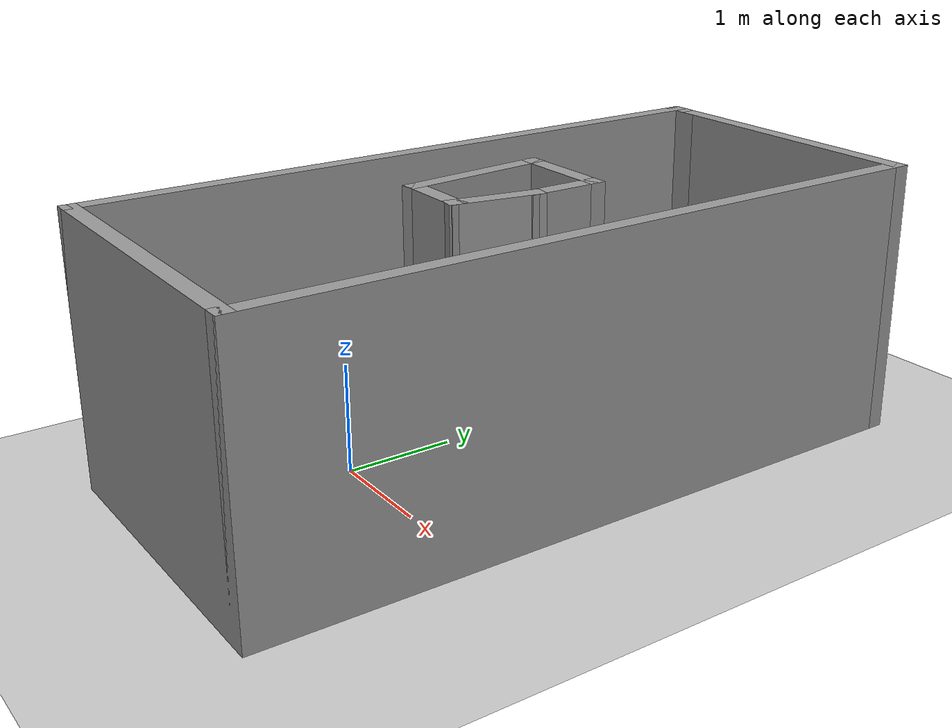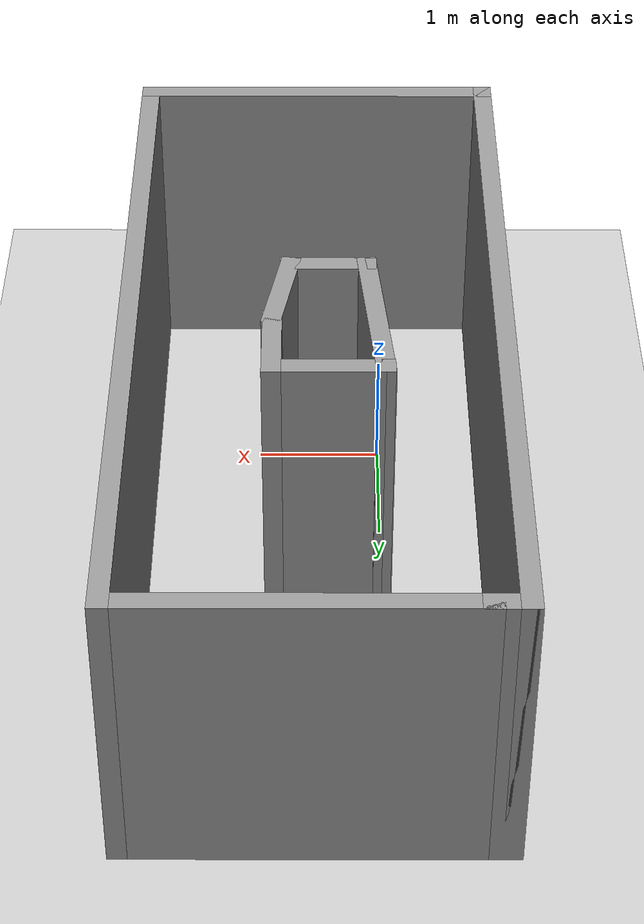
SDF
<sdf version="1.6">
 <world name="default">
  <light name="sun" type="directional">
   <pose>0 0 10 0 -0 0</pose>
   <diffuse>0.8 0.8 0.8 1</diffuse>
   <specular>0.2 0.2 0.2 1</specular>
   <attenuation>
    <range>1000</range>
    <constant>0.9</constant>
    <linear>0.01</linear>
    <quadratic>0.001</quadratic>
   </attenuation>
   <direction>-0.5 0.1 -0.9</direction>
  </light>
  <model name="ground_plane">
   <static>1</static>
   <link name="link">
    <collision name="collision">
     <geometry><plane><normal>0 0 1</normal><size>100 100</size></plane></geometry>
     <surface>
      <contact><collide_bitmask>65535</collide_bitmask></contact>
      <friction><ode><mu>100</mu><mu2>50</mu2></ode></friction>
     </surface>
    </collision>
    <visual name="visual">
     <cast_shadows>0</cast_shadows>
     <geometry><plane><normal>0 0 1</normal><size>100 100</size></plane></geometry>
     <material>
      <script><uri>file://media/materials/scripts/gazebo.material</uri><name>Gazebo/Grey</name></script>
     </material>
    </visual>
   </link>
  </model>
  <gravity>0 0 -9.8</gravity>
  <magnetic_field>6e-06 2.3e-05 -4.2e-05</magnetic_field>
  <atmosphere type="adiabatic"/>
  <physics name="default_physics" default="0" type="ode">
   <max_step_size>0.001</max_step_size>
   <real_time_factor>1</real_time_factor>
   <real_time_update_rate>1000</real_time_update_rate>
  </physics>
  <scene><ambient>0.4 0.4 0.4 1</ambient><background>0.7 0.7 0.7 1</background><shadows>1</shadows></scene>
  <spherical_coordinates>
   <surface_model>EARTH_WGS84</surface_model>
   <latitude_deg>0</latitude_deg>
   <longitude_deg>0</longitude_deg>
   <elevation>0</elevation>
   <heading_deg>0</heading_deg>
  </spherical_coordinates>
  <model name="simple_street">
   <pose>0.525 1.275 0 0 -0 0</pose>
   <link name="Wall_0">
    <collision name="Wall_0_Collision">
     <geometry><box><size>3 0.15 2.5</size></box></geometry>
     <pose>0 0 1.25 0 -0 0</pose>
    </collision>
    <visual name="Wall_0_Visual">
     <pose>0 0 1.25 0 -0 0</pose>
     <geometry><box><size>3 0.15 2.5</size></box></geometry>
     <material>
      <script><uri>file://media/materials/scripts/gazebo.material</uri><name>Gazebo/Grey</name></script>
      <ambient>1 1 1 1</ambient>
     </material>
     <meta><layer>0</layer></meta>
    </visual>
    <pose>0 -3.175 0 0 -0 0</pose>
   </link>
   <link name="Wall_2">
    <collision name="Wall_2_Collision">
     <geometry><box><size>6.5 0.15 2.5</size></box></geometry>
     <pose>0 0 1.25 0 -0 0</pose>
    </collision>
    <visual name="Wall_2_Visual">
     <pose>0 0 1.25 0 -0 0</pose>
     <geometry><box><size>6.5 0.15 2.5</size></box></geometry>
     <material>
      <script><uri>file://media/materials/scripts/gazebo.material</uri><name>Gazebo/Grey</name></script>
      <ambient>1 1 1 1</ambient>
     </material>
     <meta><layer>0</layer></meta>
    </visual>
    <pose>1.425 -0 0 0 -0 1.5708</pose>
   </link>
   <link name="Wall_3">
    <collision name="Wall_3_Collision">
     <geometry><box><size>2.75 0.15 2.5</size></box></geometry>
     <pose>0 0 1.25 0 -0 0</pose>
    </collision>
    <visual name="Wall_3_Visual">
     <pose>0 0 1.25 0 -0 0</pose>
     <geometry><box><size>2.75 0.15 2.5</size></box></geometry>
     <material>
      <script><uri>file://media/materials/scripts/gazebo.material</uri><name>Gazebo/Grey</name></script>
      <ambient>1 1 1 1</ambient>
     </material>
     <meta><layer>0</layer></meta>
    </visual>
    <pose>0.125 3.175 0 0 -0 3.14159</pose>
   </link>
   <link name="Wall_5">
    <collision name="Wall_5_Collision">
     <geometry><box><size>6.5 0.15 2.5</size></box></geometry>
     <pose>0 0 1.25 0 -0 0</pose>
    </collision>
    <visual name="Wall_5_Visual">
     <pose>0 0 1.25 0 -0 0</pose>
     <geometry><box><size>6.5 0.15 2.5</size></box></geometry>
     <material>
      <script><uri>file://media/materials/scripts/gazebo.material</uri><name>Gazebo/Grey</name></script>
      <ambient>1 1 1 1</ambient>
     </material>
     <meta><layer>0</layer></meta>
    </visual>
    <pose>-1.425 -0 0 0 -0 1.5708</pose>
   </link>
   <link name="Wall_6">
    <collision name="Wall_6_Collision">
     <geometry><box><size>0.4 0.15 2.5</size></box></geometry>
     <pose>0 0 1.25 0 -0 0</pose>
    </collision>
    <visual name="Wall_6_Visual">
     <pose>0 0 1.25 0 -0 0</pose>
     <geometry><box><size>0.4 0.15 2.5</size></box></geometry>
     <material>
      <script><uri>file://media/materials/scripts/gazebo.material</uri><name>Gazebo/Grey</name></script>
      <ambient>1 1 1 1</ambient>
     </material>
     <meta><layer>0</layer></meta>
    </visual>
    <pose>-1.3 3.175 0 0 -0 0</pose>
   </link>
   <static>1</static>
  </model>
  <model name="extra_building">
   <pose>0.433411 1.28937 0 0 -0 0</pose>
   <link name="Wall_2">
    <collision name="Wall_2_Collision">
     <geometry><box><size>0.75 0.15 2.5</size></box></geometry>
     <pose>0 0 1.25 0 -0 0</pose>
    </collision>
    <visual name="Wall_2_Visual">
     <pose>0 0 1.25 0 -0 0</pose>
     <geometry><box><size>0.75 0.15 2.5</size></box></geometry>
     <material>
      <script><uri>file://media/materials/scripts/gazebo.material</uri><name>Gazebo/Grey</name></script>
      <ambient>1 1 1 1</ambient>
     </material>
     <meta><layer>0</layer></meta>
    </visual>
    <pose>-0.00517 -0.641904 0 0 -0 0</pose>
   </link>
   <link name="Wall_4">
    <collision name="Wall_4_Collision">
     <geometry><box><size>0.75 0.15 2.5</size></box></geometry>
     <pose>0 0 1.25 0 -0 0</pose>
    </collision>
    <visual name="Wall_4_Visual">
     <pose>0 0 1.25 0 -0 0</pose>
     <geometry><box><size>0.75 0.15 2.5</size></box></geometry>
     <material>
      <script><uri>file://media/materials/scripts/gazebo.material</uri><name>Gazebo/Grey</name></script>
      <ambient>1 1 1 1</ambient>
     </material>
     <meta><layer>0</layer></meta>
    </visual>
    <pose>0.422249 0.353123 0 0 -0 1.5708</pose>
   </link>
   <link name="Wall_5">
    <collision name="Wall_5_Collision">
     <geometry><box><size>1 0.15 2.5</size></box></geometry>
     <pose>0 0 1.25 0 -0 0</pose>
    </collision>
    <visual name="Wall_5_Visual">
     <pose>0 0 1.25 0 -0 0</pose>
     <geometry><box><size>1 0.15 2.5</size></box></geometry>
     <material>
      <script><uri>file://media/materials/scripts/gazebo.material</uri><name>Gazebo/Grey</name></script>
      <ambient>1 1 1 1</ambient>
     </material>
     <meta><layer>0</layer></meta>
    </visual>
    <pose>-0.002751 0.653123 0 0 -0 3.14159</pose>
   </link>
   <link name="Wall_6">
    <collision name="Wall_6_Collision">
     <geometry><box><size>1.45651 0.15 2.5</size></box></geometry>
     <pose>0 0 1.25 0 -0 0</pose>
    </collision>
    <visual name="Wall_6_Visual">
     <pose>0 0 1.25 0 -0 0</pose>
     <geometry><box><size>1.45651 0.15 2.5</size></box></geometry>
     <material>
      <script><uri>file://media/materials/scripts/gazebo.material</uri><name>Gazebo/Grey</name></script>
      <ambient>1 1 1 1</ambient>
     </material>
     <meta><layer>0</layer></meta>
    </visual>
    <pose>-0.36646 0.002751 0 0 -0 -1.47683</pose>
   </link>
   <link name="Wall_8">
    <collision name="Wall_8_Collision">
     <geometry><box><size>0.862234 0.15 2.5</size></box></geometry>
     <pose>0 0 1.25 0 -0 0</pose>
    </collision>
    <visual name="Wall_8_Visual">
     <pose>0 0 1.25 0 -0 0</pose>
     <geometry><box><size>0.862234 0.15 2.5</size></box></geometry>
     <material>
      <script><uri>file://media/materials/scripts/gazebo.material</uri><name>Gazebo/Grey</name></script>
      <ambient>1 1 1 1</ambient>
     </material>
     <meta><layer>0</layer></meta>
    </visual>
    <pose>0.35854 -0.297249 0 0 -0 -1.75066</pose>
   </link>
   <static>1</static>
  </model>
 </world>
</sdf>
